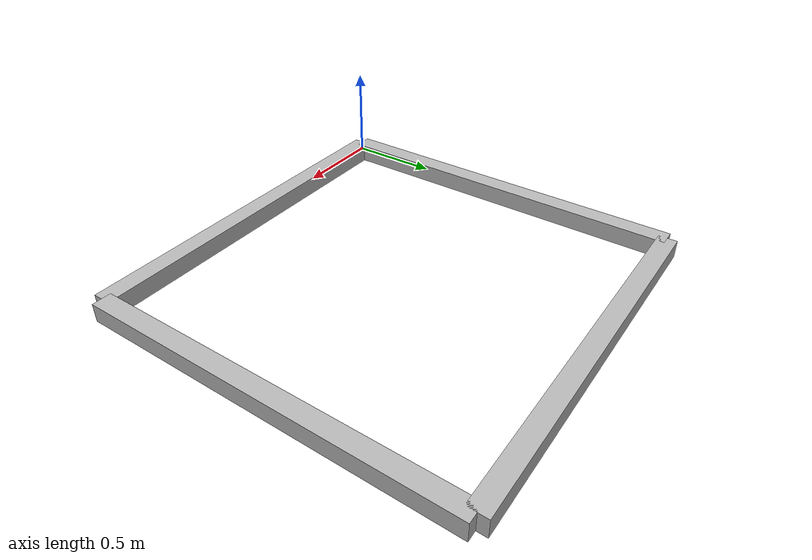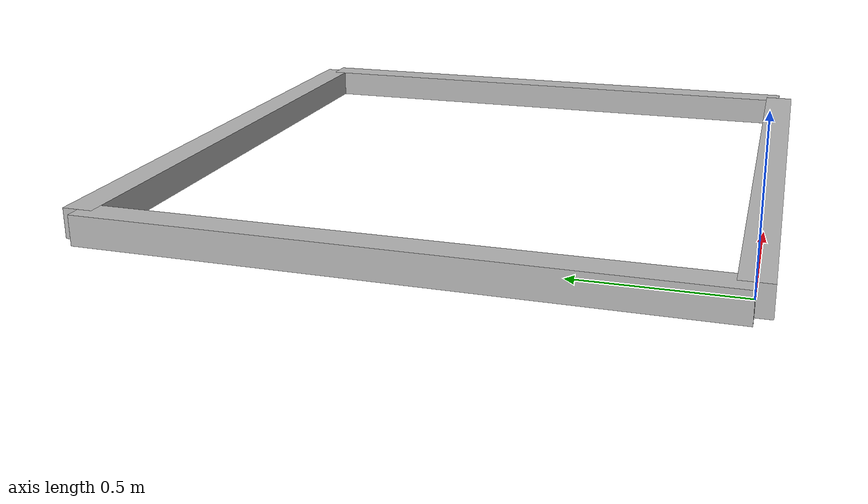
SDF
<?xml version='1.0'?>
<sdf version='1.6'>
  <model name='demo_model'>
    <static>false</static>
    <self_collide>1</self_collide>

    <!-- SDF記述メモ１：URDFとSDFではパラメータの定義方法が異なる -->
    <!-- https://answers.gazebosim.org//question/21230/warning-parsercc536-xml-attribute-in-element-not-defined-in-sdf-ignoring/ -->

    <link name="base_link">
      <pose>0 0 0 0 0 0</pose>
    </link>

    <link name="link_A">
      <self_collide>1</self_collide>
      <pose>0 0 0 0 0 0</pose>
      <inertial>
        <mass>0.5</mass>
        <pose>1 0 0 0 0 0</pose>
        <inertia> <!-- inertias are tricky to compute -->
          <!-- http://gazebosim.org/tutorials?tut=inertia&cat=build_robot -->
          <ixx>0.083</ixx>       <!-- for a box: ixx = 0.083 * mass * (y*y + z*z) -->
          <ixy>0.0</ixy>         <!-- for a box: ixy = 0 -->
          <ixz>0.0</ixz>         <!-- for a box: ixz = 0 -->
          <iyy>0.083</iyy>       <!-- for a box: iyy = 0.083 * mass * (x*x + z*z) -->
          <iyz>0.0</iyz>         <!-- for a box: iyz = 0 -->
          <izz>0.083</izz>       <!-- for a box: izz = 0.083 * mass * (x*x + y*y) -->
        </inertia>
      </inertial>
      <visual name="link_A_visual">
        <pose>1 0 0 0 0 0</pose>
        <geometry>
          <box>
            <size>2 0.1 0.1</size>
          </box>
        </geometry>
      </visual>
      <collision name="link_A_collision">
        <pose>1 0 0 0 0 0</pose>
        <geometry>
          <box>
            <size>2 0.1 0.1</size>
          </box>
        </geometry>
        <surface>
          <friction>
            <ode>
              <mu>0.01</mu>
              <mu2>0.01</mu2>
            </ode>
          </friction>
        </surface>
      </collision>
    </link>

    <link name="link_B">
      <self_collide>1</self_collide>
      <pose>2 0 0 0 0 1.57</pose>
      <inertial>
        <mass>0.5</mass>
        <pose>1 0 0 0 0 0</pose>
        <inertia> <!-- inertias are tricky to compute -->
          <!-- http://gazebosim.org/tutorials?tut=inertia&cat=build_robot -->
          <ixx>0.083</ixx>       <!-- for a box: ixx = 0.083 * mass * (y*y + z*z) -->
          <ixy>0.0</ixy>         <!-- for a box: ixy = 0 -->
          <ixz>0.0</ixz>         <!-- for a box: ixz = 0 -->
          <iyy>0.083</iyy>       <!-- for a box: iyy = 0.083 * mass * (x*x + z*z) -->
          <iyz>0.0</iyz>         <!-- for a box: iyz = 0 -->
          <izz>0.083</izz>       <!-- for a box: izz = 0.083 * mass * (x*x + y*y) -->
        </inertia>
      </inertial>
      <visual name="link_B_visual">
        <pose>1 0 0 0 0 0</pose>
        <geometry>
          <box>
            <size>2 0.1 0.1</size>
          </box>
        </geometry>
      </visual>
      <collision name="link_B_collision">
        <pose>1 0 0 0 0 0</pose>
        <geometry>
          <box>
            <size>2 0.1 0.1</size>
          </box>
        </geometry>
        <surface>
          <friction>
            <ode>
              <mu>0.01</mu>
              <mu2>0.01</mu2>
            </ode>
          </friction>
        </surface>
      </collision>
    </link>

    <link name="link_C">
      <self_collide>1</self_collide>
      <pose>2 2 0 0 0 3.14</pose>
      <inertial>
        <mass>0.5</mass>
        <pose>1 0 0 0 0 0</pose>
        <inertia> <!-- inertias are tricky to compute -->
          <!-- http://gazebosim.org/tutorials?tut=inertia&cat=build_robot -->
          <ixx>0.083</ixx>       <!-- for a box: ixx = 0.083 * mass * (y*y + z*z) -->
          <ixy>0.0</ixy>         <!-- for a box: ixy = 0 -->
          <ixz>0.0</ixz>         <!-- for a box: ixz = 0 -->
          <iyy>0.083</iyy>       <!-- for a box: iyy = 0.083 * mass * (x*x + z*z) -->
          <iyz>0.0</iyz>         <!-- for a box: iyz = 0 -->
          <izz>0.083</izz>       <!-- for a box: izz = 0.083 * mass * (x*x + y*y) -->
        </inertia>
      </inertial>
      <visual name="link_C_visual">
        <pose>1 0 0 0 0 0</pose>
        <geometry>
          <box>
            <size>2 0.1 0.1</size>
          </box>
        </geometry>
      </visual>
      <collision name="link_C_collision">
        <pose>1 0 0 0 0 0</pose>
        <geometry>
          <box>
            <size>2 0.1 0.1</size>
          </box>
        </geometry>
        <surface>
          <friction>
            <ode>
              <mu>0.01</mu>
              <mu2>0.01</mu2>
            </ode>
          </friction>
        </surface>
      </collision>
    </link>

    <link name="link_D">
      <self_collide>1</self_collide>
      <pose>0 2 0 0 0 4.71</pose>
      <inertial>
        <mass>0.5</mass>
        <pose>1 0 0 0 0 0</pose>
        <inertia> <!-- inertias are tricky to compute -->
          <!-- http://gazebosim.org/tutorials?tut=inertia&cat=build_robot -->
          <ixx>0.083</ixx>       <!-- for a box: ixx = 0.083 * mass * (y*y + z*z) -->
          <ixy>0.0</ixy>         <!-- for a box: ixy = 0 -->
          <ixz>0.0</ixz>         <!-- for a box: ixz = 0 -->
          <iyy>0.083</iyy>       <!-- for a box: iyy = 0.083 * mass * (x*x + z*z) -->
          <iyz>0.0</iyz>         <!-- for a box: iyz = 0 -->
          <izz>0.083</izz>       <!-- for a box: izz = 0.083 * mass * (x*x + y*y) -->
        </inertia>
      </inertial>
      <visual name="link_D_visual">
        <pose>1 0 0 0 0 0</pose>
        <geometry>
          <box>
            <size>2 0.1 0.1</size>
          </box>
        </geometry>
      </visual>
      <collision name="link_D_collision">
        <pose>1 0 0 0 0 0</pose>
        <geometry>
          <box>
            <size>2 0.1 0.1</size>
          </box>
        </geometry>
        <surface>
          <friction>
            <ode>
              <mu>0.01</mu>
              <mu2>0.01</mu2>
            </ode>
          </friction>
        </surface>
      </collision>
    </link>

    <joint name="base_link_to_link_A" type="fixed">
      <parent>base_link</parent>
      <child>link_A</child>
      <pose>0 0 0 0 0 0</pose>
    </joint>

    <joint name="link_A_to_link_B" type="revolute">
      <parent>link_A</parent>
      <child>link_B</child>
      <pose>0 0 0 0 0 0</pose>
      <axis>
        <limit>
          <lower>-0.785</lower>
          <upper>0.785</upper>
          <effort>100.0</effort>
          <velocity>3.14</velocity>
        </limit>
        <xyz>0 0 1</xyz>
      </axis>
    </joint>

    <joint name="link_B_to_link_C" type="revolute">
      <parent>link_B</parent>
      <child>link_C</child>
      <pose>0 0 0 0 0 0</pose>
      <axis>
        <xyz>0 0 1</xyz>
      </axis>
    </joint>

    <joint name="link_C_to_link_D" type="revolute">
      <parent>link_C</parent>
      <child>link_D</child>
      <pose>0 0 0 0 0 0</pose>
      <axis>
        <xyz>0 0 1</xyz>
      </axis>
    </joint>

    <joint name="close_joint" type="revolute">
      <parent>link_D</parent>
      <child>link_A</child>
      <pose>0 0 0 0 0 0</pose>
      <axis>
        <xyz>0 0 1</xyz>
      </axis>
    </joint>

    <!-- gazebo_ros_control plugins -->
    <plugin name="gazebo_ros_control" filename="libgazebo_ros_control.so">
      <robotNamespace>demo_model</robotNamespace>
      <robotSimType>gazebo_ros_control/DefaultRobotHWSim</robotSimType>
      <legacyModeNS>true</legacyModeNS>
    </plugin>

    <plugin name="joint_state_publisher" filename="libgazebo_ros_joint_state_publisher.so">
      <robotNamespace>demo_model</robotNamespace>
      <jointName>base_link_to_link_A, link_A_to_link_B, link_B_to_link_C, link_C_to_link_D</jointName>
      <!-- SDF記述メモ："fixed"に設定されたJointはnan値が出力されるのでROS側で下記エラーが出る -->
      <!-- Ignoring transform for child_frame_id "hoge" from authority "unknown_publisher" because of an invalid quaternion in the transform (nan nan nan nan) -->
    </plugin>

  </model>
</sdf>
